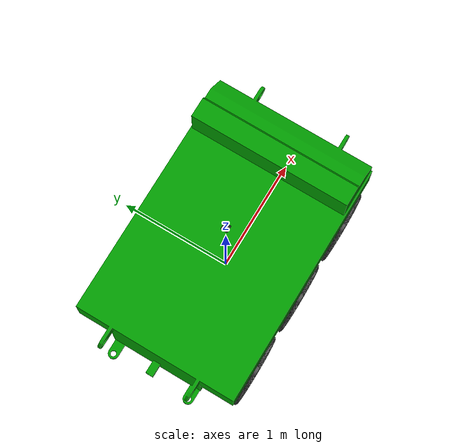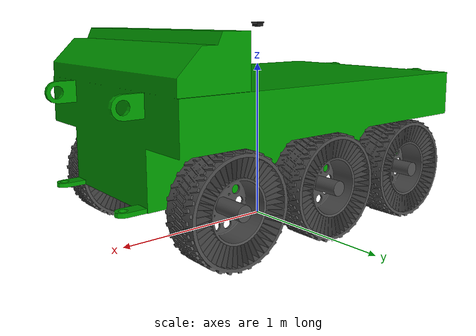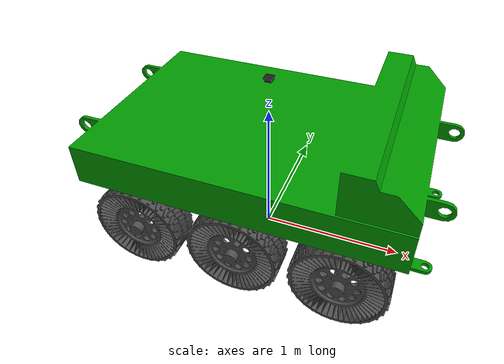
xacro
<?xml version="1.0"?>
<robot name="wolf" xmlns:xacro="http://www.ros.org/wiki/xacro">

  <!-- Wolf vehicle parameters (source: wolf_description/urdf/wolf.urdf) -->
  <xacro:property name="wheel_radius" value="0.32029"/>
  <xacro:property name="wheel_width" value="0.30"/>
  <xacro:property name="wheel_y" value="0.5957"/>
  <xacro:property name="wheel_x" value="0.6985"/>
  <xacro:property name="wheel_separation" value="1.1914"/>
  <xacro:property name="wheelbase" value="1.397"/>
  <xacro:property name="chassis_z" value="0.32"/>
  <xacro:property name="vehicle_mass" value="900"/>
  <xacro:property name="wheel_mass" value="80"/>

  <!-- base_link (ground projected)   -->
  <link name="base_link"/>

  <joint name="base_to_wolf_base_joint" type="fixed">
    <parent link="base_link"/>
    <child link="wolf_base_link"/>
    <origin xyz="0 0 0" rpy="0 0 0"/>
  </joint>

  <link name="wolf_base_link">
    <inertial>
      <mass value="0.0001"/>
      <origin xyz="0 0 0" rpy="0 0 0"/>
      <inertia ixx="0.0001" ixy="0" ixz="0" iyy="0.0001" iyz="0" izz="0.0001"/>
    </inertial>
  </link>

  <joint name="wolf_ground_to_chassis_center" type="fixed">
    <parent link="wolf_base_link"/>
    <child link="wolf_chassis_link"/>
    <origin xyz="0 0 ${chassis_z}" rpy="0 0 0"/>
  </joint>

  <!-- Chassis (physical body)        -->
  <link name="wolf_chassis_link">
    <visual>
      <geometry>
        <mesh filename="$(find base_nav2_stack)/meshes/Wolf/Wolf_Body.stl"/>
      </geometry>
      <material name="wolf_green">
        <color rgba="0.0 0.6 0.0 1.0"/>
      </material>
    </visual>

    <collision>
      <origin xyz="0 0 0" rpy="0 0 0"/>
      <geometry>
        <box size="1.6 1.3 0.5"/>
      </geometry>
    </collision>

    <inertial>
      <origin xyz="0 0 0" rpy="0 0 0"/>
      <mass value="${vehicle_mass}"/>
      <inertia ixx="213.3375" ixy="0" ixz="0" iyy="515.9775" iyz="0" izz="605.1"/>
    </inertial>
  </link>

  <!-- Left wheels (front/center/rear) -->
  <xacro:macro name="wolf_wheel" params="name x y">
    <joint name="wolf_${name}_wheel_joint" type="continuous">
      <parent link="wolf_chassis_link"/>
      <child link="wolf_${name}_wheel"/>
      <origin xyz="${x} ${y} 0" rpy="0 0 0"/>
      <axis xyz="0 1 0"/>
      <limit effort="400" velocity="50"/>
      <dynamics damping="1.0" friction="0.0"/>
    </joint>

    <link name="wolf_${name}_wheel">
      <visual>
        <origin xyz="0 0 0" rpy="1.5708 0 0"/>
        <geometry>
          <mesh filename="$(find base_nav2_stack)/meshes/Wolf/Wolf_Wheel.stl"/>
        </geometry>
        <material name="wheel_black">
          <color rgba="0.3 0.3 0.3 1.0"/>
        </material>
      </visual>

      <collision>
        <origin xyz="0 0 0" rpy="1.5708 0 0"/>
        <geometry>
          <cylinder length="${wheel_width}" radius="${wheel_radius}"/>
        </geometry>
      </collision>

      <inertial>
        <origin xyz="0 0 0" rpy="0 0 0"/>
        <mass value="${wheel_mass}"/>
        <inertia ixx="2.396386" ixy="0" ixz="0" iyy="2.396386" iyz="0" izz="4.096"/>
      </inertial>
    </link>
  </xacro:macro>

  <xacro:wolf_wheel name="left_front" x="${wheel_x}" y="${wheel_y}"/>
  <xacro:wolf_wheel name="left_center" x="0" y="${wheel_y}"/>
  <xacro:wolf_wheel name="left_rear" x="${-wheel_x}" y="${wheel_y}"/>
  <xacro:wolf_wheel name="right_front" x="${wheel_x}" y="${-wheel_y}"/>
  <xacro:wolf_wheel name="right_center" x="0" y="${-wheel_y}"/>
  <xacro:wolf_wheel name="right_rear" x="${-wheel_x}" y="${-wheel_y}"/>

  <!-- VectorNav IMU + GPS mounts     -->
  <link name="imu_link">
    <visual>
      <origin xyz="0 0 0" rpy="0 0 0"/>
      <geometry>
        <box size="0.05 0.05 0.02"/>
      </geometry>
      <material name="imu_darkgray">
        <color rgba="0.1 0.1 0.1 1.0"/>
      </material>
    </visual>
    <inertial>
      <mass value="0.05"/>
      <inertia ixx="0.0001" ixy="0" ixz="0" iyy="0.0001" iyz="0" izz="0.0001"/>
    </inertial>
  </link>

  <joint name="imu_joint" type="fixed">
    <parent link="wolf_base_link"/>
    <child link="imu_link"/>
    <origin xyz="0 0 1.245" rpy="0 0 0"/>
  </joint>

  <link name="gps_link">
    <visual>
      <origin xyz="0 0 0" rpy="0 0 0"/>
      <geometry>
        <box size="0.06 0.06 0.01"/>
      </geometry>
      <material name="gps_darkgray">
        <color rgba="0.1 0.1 0.1 1.0"/>
      </material>
    </visual>
    <inertial>
      <mass value="0.05"/>
      <inertia ixx="0.0001" ixy="0" ixz="0" iyy="0.0001" iyz="0" izz="0.0001"/>
    </inertial>
  </link>

  <joint name="gps_joint" type="fixed">
    <parent link="wolf_base_link"/>
    <child link="gps_link"/>
    <origin xyz="0 0 1.26" rpy="0 0 0"/>
  </joint>

</robot>
